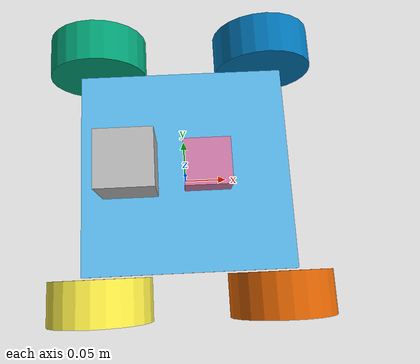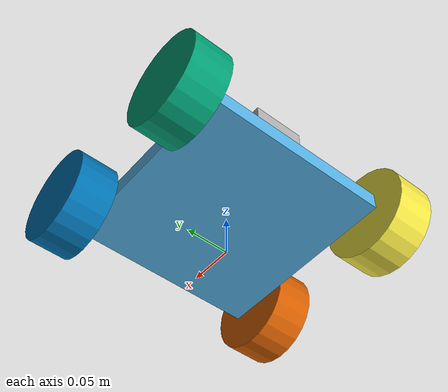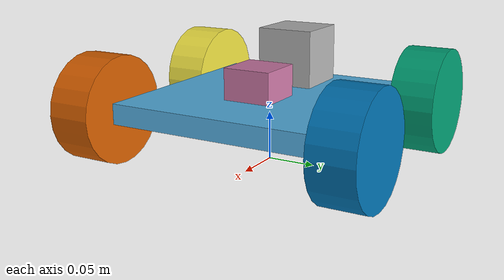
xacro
<?xml version='1.0'?>

<robot name="skid_steer_bot" xmlns:xacro="http://www.ros.org/wiki/xacro">
  <!-- Scale the robot size to fit the environment -->
  <xacro:property name="scale" value="1.0" />

  <!-- Length along X-axis, Width along Y-axis, Height along Z-axis -->
  <xacro:property name="mower_width" value="${scale * 0.318}" />
  <xacro:property name="mower_length" value="${scale * 0.19}" />
  <xacro:property name="mower_height" value="${scale * 0.084}" />
  <xacro:property name="mower_mass" value="${scale * 10}" />

  <xacro:property name="base_x_offset" value="0" />

  <!-- inertia = 1/12*m(h^2+d^2) -->
  <xacro:property name="height_2" value="${mower_height * mower_height}" />
  <xacro:property name="width_2" value="${mower_width * mower_width}" />
  <xacro:property name="length_2" value="${mower_length * mower_length}" />
  <xacro:property name="mower_inertia_xx" value="${mower_mass/12.0 * (height_2 + width_2)}" />
  <xacro:property name="mower_inertia_yy" value="${mower_mass/12.0 * (height_2 + length_2)}" />
  <xacro:property name="mower_inertia_zz" value="${mower_mass/12.0 * (width_2 + length_2)}" />
  <xacro:property name="mower_i_x_pos" value="${base_x_offset}" />
  <xacro:property name="mower_i_z_pos" value="${mower_height/3.0}" />

  <xacro:property name="mower_frame_width" value="${mower_width - 2.1 * wheel_length}" />
  <xacro:property name="mower_frame_length" value="${mower_length*1.2}" />
  <xacro:property name="mower_frame_height" value="${mower_height/4.0}" />

  <xacro:property name="hardware_width" value="${mower_width/2.0}" />
  <xacro:property name="hardware_length" value="${mower_length/2.0}" />
  <xacro:property name="hardware_height" value="${mower_height/2.0}" />
  <xacro:property name="hardware_z_offset" value="${hardware_height/2.0}" />

  <xacro:property name="wheel_length" value="${scale * 0.045}" />
  <xacro:property name="wheel_radius" value="${scale * 0.055}" />
  <xacro:property name="wheel_mass" value="${scale * 1}" />
  <xacro:property name="wheel_inertia" value="${scale * 1e-3}" />
  <xacro:property name="wheel_x_offset" value="${base_x_offset + mower_length/2.0}" />
  <xacro:property name="wheel_y_offset" value="${mower_width/2.0 - wheel_length/2.0}" />

  <xacro:property name="Imu_width" value="0.05" />
  <xacro:property name="Imu_length" value="0.05" />
  <xacro:property name="Imu_height" value="0.05" />
  <xacro:property name="Imu_x_offset" value="${hardware_length/2.0 + base_x_offset - Imu_length/2.0 + 0.001}" />
  <xacro:property name="Imu_z_offset" value="${hardware_height - Imu_height/2.0 + 0.001}" />

  <xacro:property name="laser_width" value="0.1" />
  <xacro:property name="laser_length" value="0.1" />
  <xacro:property name="laser_height" value="0.1" />
  <xacro:property name="laser_x_offset" value="${base_x_offset -0.06}" />
  <xacro:property name="laser_z_offset" value="${hardware_height}" />

  <xacro:property name="wheel_kp" value="1000000.0" />
  <xacro:property name="wheel_kd" value="100.0" />
  <xacro:property name="wheel_mu1" value="1" />
  <xacro:property name="wheel_mu2" value="1" />
  <xacro:property name="wheel_slip1" value="0.5" />
  <xacro:property name="wheel_slip2" value="0" />

  <link name="base_footprint"></link>

  <link name='base_link'>
    <inertial>
      <mass value="${mower_mass}"/>
      <origin xyz="${mower_i_x_pos} 0 ${mower_i_z_pos}" rpy=" 0 0 0"/>
      <inertia
          ixx="${mower_inertia_xx}" ixy="0" ixz="0"
          iyy="${mower_inertia_yy}" iyz="0"
          izz="${mower_inertia_zz}" />
    </inertial>

    <collision>
      <origin xyz="${base_x_offset} 0 0" rpy=" 0 0 0"/>
      <geometry>
        <box size="${mower_frame_length} ${mower_frame_width} ${mower_frame_height}"/>
      </geometry>
    </collision>
    <visual>
      <origin xyz="${base_x_offset} 0 0" rpy=" 0 0 0"/>
      <geometry>
        <box size="${mower_frame_length} ${mower_frame_width} ${mower_frame_height}"/>
      </geometry>
    </visual>

    <!-- blade frame -->

    <!-- hardware frame -->
    <collision>
      <origin xyz="${base_x_offset} 0 ${hardware_z_offset}" rpy=" 0 0 0"/>
      <geometry>
        <box size="${hardware_length} ${hardware_width} ${hardware_height}"/>
      </geometry>
    </collision>

  </link>

  <joint name="robot_footprint_joint" type="fixed">
    <origin xyz="0 0 0.06" rpy="0 0 0" />
    <parent link="base_footprint" />
    <child link="base_link" />
  </joint>
  <link name="left_back_wheel">
    <inertial>
      <mass value="${wheel_mass}"/>
      <origin xyz="0.0 0 0" rpy=" 0 1.5707 1.5707"/>
      <inertia
        ixx="${wheel_inertia}" ixy="0" ixz="0"
        iyy="${wheel_inertia}" iyz="0"
        izz="${wheel_inertia}" />
    </inertial>
    <collision name="left_back_wheel_collision">
      <origin xyz="0 0 0" rpy=" 0 1.5707 1.5707"/>
      <geometry>
        <cylinder length="${wheel_length}" radius="${wheel_radius}"/>
      </geometry>
      <surface>
        <friction>
          <fdir1>1 0 0</fdir1>
          <kp>${wheel_kp}</kp> <!-- kp and kd for rubber -->
          <kd>${wheel_kd}</kd>
          <mu>${wheel_mu1}</mu>
          <mu2>${wheel_mu2}</mu2>
          <slip1>${wheel_slip1}</slip1>
          <slip2>${wheel_slip2}</slip2>
        </friction>
      </surface>
    </collision>
    <visual name="left_back_wheel_visual">
      <origin xyz="0 0 0" rpy=" 0 1.5707 1.5707"/>
      <geometry>
        <cylinder length="${wheel_length}" radius="${wheel_radius}"/>
      </geometry>
    </visual>
  </link>
  <joint type="continuous" name="left_back_wheel_joint">
    <origin xyz="-${wheel_x_offset} ${wheel_y_offset} 0" rpy="0 0 0"/>
    <child link="left_back_wheel"/>
    <parent link="base_link"/>
    <axis xyz="0 1 0" rpy="0 0 0"/>
    <limit effort="10000" velocity="1000"/>
    <joint_properties damping="1.0" friction="1.0"/>
  </joint>

    <!-- right back wheel -->
    <joint type="continuous" name="right_back_wheel_joint">
      <origin xyz="-${wheel_x_offset} -${wheel_y_offset} 0" rpy="0 0 0"/>
      <child link="right_back_wheel"/>
      <parent link="base_link"/>
      <axis xyz="0 1 0" rpy="0 0 0"/>
      <limit effort="10000" velocity="1000"/>
      <joint_properties damping="1.0" friction="1.0"/>
    </joint>

    <link name="right_back_wheel">
      <inertial>
        <mass value="${wheel_mass}"/>
        <origin xyz="0.0 0 0" rpy=" 0 1.5707 1.5707"/>
        <inertia
            ixx="${wheel_inertia}" ixy="0" ixz="0"
            iyy="${wheel_inertia}" iyz="0"
            izz="${wheel_inertia}" />
      </inertial>
      <collision name="right_back_wheel_collision">
        <origin xyz="0 0 0" rpy=" 0 1.5707 1.5707"/>
        <geometry>
          <cylinder length="${wheel_length}" radius="${wheel_radius}"/>
        </geometry>
        <surface>
          <friction>
            <fdir1>1 0 0</fdir1>
            <kp>${wheel_kp}</kp> <!-- kp and kd for rubber -->
            <kd>${wheel_kd}</kd>
            <mu>${wheel_mu1}</mu>
            <mu2>${wheel_mu2}</mu2>
            <slip1>${wheel_slip1}</slip1>
            <slip2>${wheel_slip2}</slip2>
          </friction>
        </surface>
      </collision>
      <visual name="right_back_wheel_visual">
        <origin xyz="0 0 0" rpy=" 0 1.5707 1.5707"/>
        <geometry>
          <cylinder length="${wheel_length}" radius="${wheel_radius}"/>
        </geometry>
      </visual>
    </link>

      <!-- left front wheel -->
  <joint type="continuous" name="left_front_wheel_joint">
    <origin xyz="${wheel_x_offset} ${wheel_y_offset} 0" rpy="0 0 0"/>
    <child link="left_front_wheel"/>
    <parent link="base_link"/>
    <axis xyz="0 1 0" rpy="0 0 0"/>
    <limit effort="10000" velocity="1000"/>
    <joint_properties damping="1.0" friction="1.0"/>
  </joint>

  <link name="left_front_wheel">
    <inertial>
      <mass value="${wheel_mass}"/>
      <origin xyz="0.0 0 0" rpy=" 0 1.5707 1.5707"/>
      <inertia
        ixx="${wheel_inertia}" ixy="0" ixz="0"
        iyy="${wheel_inertia}" iyz="0"
        izz="${wheel_inertia}" />
    </inertial>
    <collision name="left_front_wheel_collision">
      <origin xyz="0 0 0" rpy=" 0 1.5707 1.5707"/>
      <geometry>
        <cylinder length="${wheel_length}" radius="${wheel_radius}"/>
      </geometry>
      <surface>
        <friction>
          <fdir1>1 0 0</fdir1>
          <kp>${wheel_kp}</kp> <!-- kp and kd for rubber -->
          <kd>${wheel_kd}</kd>
          <mu>${wheel_mu1}</mu>
          <mu2>${wheel_mu2}</mu2>
          <slip1>${wheel_slip1}</slip1>
          <slip2>${wheel_slip2}</slip2>
        </friction>
      </surface>
    </collision>
    <visual name="left_front_wheel_visual">
      <origin xyz="0 0 0" rpy=" 0 1.5707 1.5707"/>
      <geometry>
        <cylinder length="${wheel_length}" radius="${wheel_radius}"/>
      </geometry>
    </visual>
  </link>

  <!-- right front wheel -->
  <joint type="continuous" name="right_front_wheel_joint">
    <origin xyz="${wheel_x_offset} -${wheel_y_offset} 0" rpy="0 0 0"/>
    <child link="right_front_wheel"/>
    <parent link="base_link"/>
    <axis xyz="0 1 0" rpy="0 0 0"/>
    <limit effort="10000" velocity="1000"/>
    <joint_properties damping="1.0" friction="1.0"/>
  </joint>

  <link name="right_front_wheel">
    <inertial>
      <mass value="${wheel_mass}"/>
      <origin xyz="0.0 0 0" rpy=" 0 1.5707 1.5707"/>
      <inertia
          ixx="${wheel_inertia}" ixy="0" ixz="0"
          iyy="${wheel_inertia}" iyz="0"
          izz="${wheel_inertia}" />
    </inertial>
    <collision name="right_front_wheel_collision">
      <origin xyz="0 0 0" rpy=" 0 1.5707 1.5707"/>
      <geometry>
        <cylinder length="${wheel_length}" radius="${wheel_radius}"/>
      </geometry>
      <surface>
        <friction>
          <fdir1>1 0 0</fdir1>
          <kp>${wheel_kp}</kp> <!-- kp and kd for rubber -->
          <kd>${wheel_kd}</kd>
          <mu>${wheel_mu1}</mu>
          <mu2>${wheel_mu2}</mu2>
          <slip1>${wheel_slip1}</slip1>
          <slip2>${wheel_slip2}</slip2>
        </friction>
      </surface>
    </collision>
    <visual name="right_front_wheel_visual">
      <origin xyz="0 0 0" rpy=" 0 1.5707 1.5707"/>
      <geometry>
        <cylinder length="${wheel_length}" radius="${wheel_radius}"/>
      </geometry>
    </visual>
  </link>

  <link name='Imu_link'>
    <inertial>
      <mass value="0.1"/>
      <origin xyz="0 0 0" rpy=" 0 0 0"/>
      <inertia
          ixx="1e-6" ixy="0" ixz="0"
          iyy="1e-6" iyz="0"
          izz="1e-6"/>
    </inertial>
    <collision name='Imu_collision'>
      <origin xyz="0 0 0" rpy=" 0 0 0"/>
      <geometry>
        <box size="${Imu_length} ${Imu_width} ${Imu_height}"/>
      </geometry>
    </collision>
    <visual name='Imu_visual'>
      <origin xyz="0 0 0" rpy=" 0 0 0"/>
      <geometry>
        <box size="${Imu_length} ${Imu_width} ${Imu_height}"/>
      </geometry>
    </visual>
  </link>

  <joint type="fixed" name="Imu_joint">
    <origin xyz="${Imu_x_offset} 0 ${Imu_z_offset}" rpy="0 0 0"/>
    <child link="Imu_link"/>
    <parent link="base_link"/>
    <axis xyz="0 1 0" rpy="0 0 0"/>
    <limit effort="10000" velocity="1000"/>
    <joint_properties damping="1.0" friction="1.0"/>
  </joint>

  <link name='hokuyo'>
    <pose>0 0 0 0 0 0</pose>
    <inertial>
      <mass value="0.1"/>
      <origin xyz="0 0 0" rpy=" 0 0 0"/>
      <inertia
          ixx="1e-6" ixy="0" ixz="0"
          iyy="1e-6" iyz="0"
          izz="1e-6" />
    </inertial>
    <collision name='hokuyo_collision'>
      <origin xyz="0 0 0" rpy=" 0 0 0"/>
      <geometry>
        <box size="${laser_length} ${laser_width} ${laser_height}"/>
      </geometry>
    </collision>
    <visual name='hokuyo_visual'>
      <origin xyz="0 0 0" rpy=" 0 0 0"/>
      <geometry>
        <box size="0.06 0.06 0.06"/>
      </geometry>
    </visual>
  </link>

  <joint type="fixed" name="hokuyo_joint">
    <origin xyz="${laser_x_offset} 0 ${laser_z_offset}" rpy="0 0 0"/>
    <child link="hokuyo"/>
    <parent link="base_link"/>
    <axis xyz="0 1 0" rpy="0 0 0"/>
    <limit effort="10000" velocity="1000"/>
    <joint_properties damping="1.0" friction="1.0"/>
  </joint>

  <!-- right wheels transmission -->
  <transmission name="transmission_right_front_wheel">
    <type>transmission_interface/SimpleTransmission</type>
    <joint name="right_front_wheel_joint">
        <hardwareInterface>hardware_interface/EffortJointInterface</hardwareInterface>
    </joint>
    <actuator name="right_front_wheel">
        <hardwareInterface>hardware_interface/EffortJointInterface</hardwareInterface>
        <mechanicalReduction>1</mechanicalReduction>
    </actuator>
  </transmission>

  <transmission name="transmission_right_back_wheel">
    <type>transmission_interface/SimpleTransmission</type>
    <joint name="right_back_wheel_joint">
        <hardwareInterface>hardware_interface/EffortJointInterface</hardwareInterface>
    </joint>
    <actuator name="right_back_wheel">
        <hardwareInterface>hardware_interface/EffortJointInterface</hardwareInterface>
        <mechanicalReduction>1</mechanicalReduction>
    </actuator>
  </transmission>

    <!-- left wheels transmission -->
    <transmission name="transmission_left_front_wheel">
      <type>transmission_interface/SimpleTransmission</type>
      <joint name="left_front_wheel_joint">
          <hardwareInterface>hardware_interface/EffortJointInterface</hardwareInterface>
      </joint>
      <actuator name="left_front_wheel">
          <hardwareInterface>hardware_interface/EffortJointInterface</hardwareInterface>
          <mechanicalReduction>1</mechanicalReduction>
      </actuator>
    </transmission>

    <transmission name="transmission_left_back_wheel">
      <type>transmission_interface/SimpleTransmission</type>
      <joint name="left_back_wheel_joint">
          <hardwareInterface>hardware_interface/EffortJointInterface</hardwareInterface>
      </joint>
      <actuator name="left_back_wheel">
          <hardwareInterface>hardware_interface/EffortJointInterface</hardwareInterface>
          <mechanicalReduction>1</mechanicalReduction>
      </actuator>
    </transmission>

    <!-- Rear disks transmission -->
<transmission name="transmission_rear_left_disk">
  <type>transmission_interface/SimpleTransmission</type>
  <joint name="left_back_wheel_joint">
      <hardwareInterface>hardware_interface/EffortJointInterface</hardwareInterface>
  </joint>
  <actuator name="left_back_wheel">
      <hardwareInterface>hardware_interface/EffortJointInterface</hardwareInterface>
      <mechanicalReduction>1</mechanicalReduction>
  </actuator>
</transmission>

<transmission name="transmission_rear_right_disk">
  <type>transmission_interface/SimpleTransmission</type>
  <joint name="right_back_wheel_joint">
      <hardwareInterface>hardware_interface/EffortJointInterface</hardwareInterface>
  </joint>
  <actuator name="right_back_wheel">
      <hardwareInterface>hardware_interface/EffortJointInterface</hardwareInterface>
      <mechanicalReduction>1</mechanicalReduction>
  </actuator>
</transmission>

 <!-- Front disks transmission -->
 <transmission name="transmission_front_left_disk">
  <type>transmission_interface/SimpleTransmission</type>
  <joint name="joint_front_left_disk">
      <hardwareInterface>hardware_interface/EffortJointInterface</hardwareInterface>
  </joint>
  <actuator name="motor_front_left_disk">
      <hardwareInterface>hardware_interface/EffortJointInterface</hardwareInterface>
      <mechanicalReduction>1</mechanicalReduction>
  </actuator>
</transmission>

<transmission name="transmission_front_right_disk">
  <type>transmission_interface/SimpleTransmission</type>
  <joint name="joint_front_right_disk">
      <hardwareInterface>hardware_interface/EffortJointInterface</hardwareInterface>
  </joint>
  <actuator name="motor_front_right_disk">
      <hardwareInterface>hardware_interface/EffortJointInterface</hardwareInterface>
      <mechanicalReduction>1</mechanicalReduction>
  </actuator>
</transmission>

  <gazebo>
    <plugin name="gazebo_ros_control" filename="libgazebo_ros_control.so">
      <robotNamespace>/skid_steer_robot</robotNamespace>
      <robotSimType>gazebo_ros_control/DefaultRobotHWSim</robotSimType>
    </plugin>
  </gazebo>

</robot>
